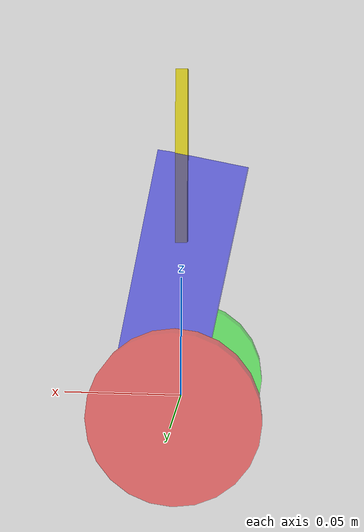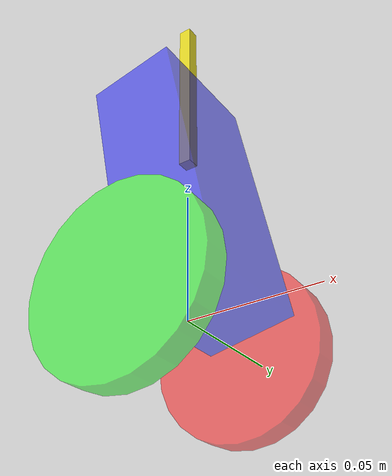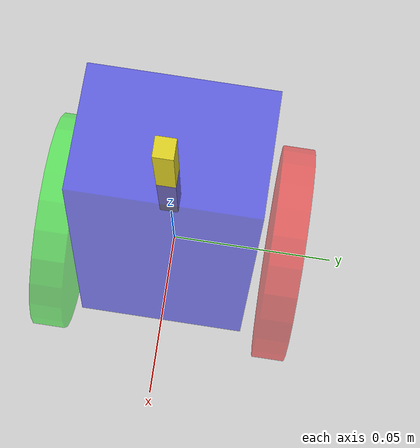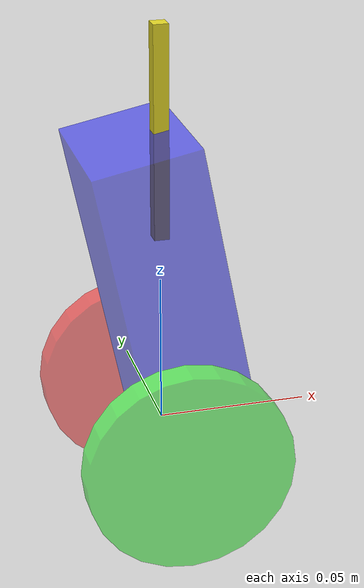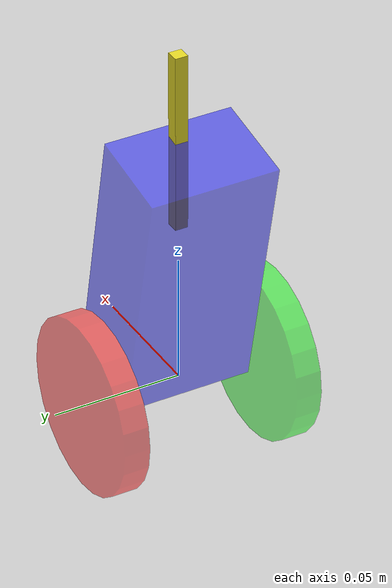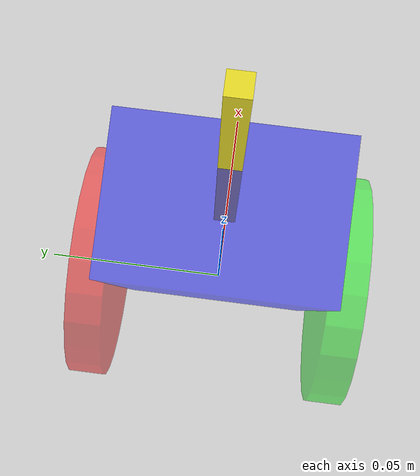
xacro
<?xml version="1.0"?>
<robot name="car_robot" xmlns:xacro="http://www.ros.org/wiki/xacro">

  <!-- Numerical Macros - units are meters and radians -->
  <xacro:property name="wheel_separation" value="0.070" />
  <xacro:property name="wheel_radius" value="0.034" />
  <xacro:property name="wheel_width"  value="0.010" />
  <xacro:property name="body_height"  value="0.1" />
  <xacro:property name="body_width"   value="0.050" />
  <xacro:property name="body_length"  value="0.035" />
  <xacro:property name="camera_link_height"  value="0.07" />
  <xacro:property name="camera_link_width"   value="0.005" />
  <xacro:property name="camera_link_length"  value="0.005" />

   <link name="edumip_body">

    <visual>
      <origin xyz="0 0 ${0.5*body_height}" rpy="0 -0.2 0" />
      <geometry>
        <box size="${body_length} ${body_width} ${body_height}" />
      </geometry>
      <material name="Blue">
      	<color rgba="0 0.0 1.0 0.5" />
      </material>
    </visual>

    <collision>
      <origin xyz="0 0 ${0.5*body_height}" rpy="0 -0.2 0" />
      <geometry>
        <box size="${body_length} ${body_width} ${body_height}" />
      </geometry>
    </collision>

  <inertial>
    <origin xyz="0 0 ${0.5*body_height}" rpy="0 0 0"/>
    <mass value="0.180"/>
    <inertia ixx="6.0e-4" ixy="0" ixz="0" iyy="6.0e-4" iyz="0" izz="6.0e-4"/>
  </inertial>
   </link>

   <link name="wheelR">

    <visual>
      <origin xyz="0 0 0" rpy="1.57079 0 0" />
      <geometry>
        <cylinder length="${wheel_width}" radius="${wheel_radius}" />
      </geometry>
      <material name="Green">
      	<color rgba="0.0 1.0 0.0 0.5" />
      </material>
    </visual>

    <collision>
      <origin xyz="0 0 0" rpy="1.57079 0 0" />
      <geometry>
        <cylinder length="${wheel_width}" radius="${wheel_radius}" />
      </geometry>
    </collision>

  <inertial>
    <origin xyz="0 0 0" rpy="0 0 0"/>
    <mass value="0.030"/>
    <inertia ixx="1.75e-5" ixy="0" ixz="0" iyy="1.75e-5" iyz="0" izz="1.75e-5"/>
  </inertial>
   </link>

   <link name="wheelL">

    <visual>
      <origin xyz="0 0 0" rpy="1.57079 0 0" />
      <geometry>
        <cylinder length="${wheel_width}" radius="${wheel_radius}" />
      </geometry>
      <material name="Red">
      	<color rgba="1 0 0 0.5" />
      </material>
    </visual>

    <collision>
      <origin xyz="0 0 0" rpy="1.57079 0 0" />
      <geometry>
        <cylinder length="${wheel_width}" radius="${wheel_radius}" />
      </geometry>
    </collision>

  <inertial>
    <origin xyz="0 0 0" rpy="0 0 0"/>
    <mass value="0.030"/>
    <inertia ixx="1.75e-5" ixy="0" ixz="0" iyy="1.75e-5" iyz="0" izz="1.75e-5"/>
  </inertial>
   </link>

     <!-- Camera -->
  <link name="camera_link">
    <collision>
      <origin xyz="0 0 0" rpy="0 0 0"/>
      <geometry>
  <box size="${camera_link_length} ${camera_link_width} ${camera_link_height}"/>
      </geometry>
    </collision>

    <visual>
      <origin xyz="0 0 0" rpy="0 0 0"/>
      <geometry>
  <box size="${camera_link_length} ${camera_link_width} ${camera_link_height}"/>
      </geometry>
      <material name="Yellow"/>
    </visual>

    <inertial>
      <mass value="1e-5" />
      <origin xyz="0 0 0" rpy="0 0 0"/>
      <inertia ixx="1e-6" ixy="0" ixz="0" iyy="1e-6" iyz="0" izz="1e-6" />
    </inertial>
  </link>

  <!-- Hokuyo Laser -->
  <link name="hokuyo_link">
    <collision>
      <origin xyz="0 0 0" rpy="0 0 0"/>
      <geometry>
  <box size="0.1 0.1 0.1"/>
      </geometry>
    </collision>

    <inertial>
      <mass value="1e-5" />
      <origin xyz="0 0 0" rpy="0 0 0"/>
      <inertia ixx="1e-6" ixy="0" ixz="0" iyy="1e-6" iyz="0" izz="1e-6" />
    </inertial>
  </link>

<joint name="camera_joint" type="fixed">
  <parent link="edumip_body"/>
  <child link="camera_link"/>
  <origin xyz="0 0 ${body_height}" rpy="0 0 0"/>
  <axis xyz="0 1 0"/>
</joint>

  <joint name="hokuyo_joint" type="fixed">
    <axis xyz="0 1 0" />
    <origin xyz="0 0 ${(body_height+camera_link_height)*0.6}" rpy="0 0 0"/>
    <parent link="edumip_body"/>
    <child link="hokuyo_link"/>
  </joint>

   <joint name="jointR" type="continuous">
    <parent link="edumip_body" />
    <child link="wheelR" />
    <origin xyz="0 ${-wheel_separation * 0.5} 0" rpy="0 0 0" />
    <axis xyz="0 1 0" />
    <dynamics friction="0.0"/>
   </joint>

   <joint name="jointL" type="continuous">
    <parent link="edumip_body" />
    <child link="wheelL" />
    <origin xyz="0 ${+wheel_separation * 0.5} 0" rpy="0 0 0" />
    <axis xyz="0 1 0" />
    <dynamics friction="0.0"/>
   </joint>

 <gazebo reference="edumip_body">
   <material>Gazebo/Blue</material>
   <mu1>0.2</mu1>
   <mu2>0.2</mu2>
 </gazebo>
 <gazebo reference="wheelR">
   <material>Gazebo/Green</material>
   <mu1>0.2</mu1>
   <mu2>0.2</mu2>
 </gazebo>
 <gazebo reference="wheelL">
   <material>Gazebo/Red</material>
   <mu1>0.2</mu1>
   <mu2>0.2</mu2>
 </gazebo>

<gazebo reference="camera_link">
  <material>Gazebo/Yellow</material>
</gazebo>

<gazebo>
 <plugin name="edumip_balance_ros_gazebo_plugin" filename="libedumip_balance_ros_gazebo_plugin.so">
 <rosDebugLevel>3</rosDebugLevel>
 <updateRate>100</updateRate>
 <robotBaseFrame>edumip_body</robotBaseFrame>
 <leftJoint>jointL</leftJoint>
 <rightJoint>jointR</rightJoint>
 <wheelSeparation>${wheel_separation}</wheelSeparation>
 <wheelDiameter>${wheel_radius*2.0}</wheelDiameter>
 <commandTopic>/edumip/cmd</commandTopic>
 <stateTopic>/edumip/state</stateTopic>
 </plugin>
</gazebo>

 <gazebo reference="camera_link">
 <sensor type="camera" name="camera1">
   <update_rate>30.0</update_rate>
   <camera name="head">
     <horizontal_fov>1.3962634</horizontal_fov>
     <image>
       <width>800</width>
       <height>800</height>
       <format>R8G8B8</format>
     </image>
     <clip>
       <near>0.02</near>
       <far>300</far>
     </clip>
     <noise>
       <type>gaussian</type>
       <mean>0.0</mean>
       <stddev>0.007</stddev>
     </noise>
   </camera>
   <plugin name="camera_controller" filename="libgazebo_ros_camera.so">
     <robotNamespace>edumip</robotNamespace>
     <alwaysOn>true</alwaysOn>
     <updateRate>10.0</updateRate>
     <cameraName>camera1</cameraName>
     <imageTopicName>image_raw</imageTopicName>
     <cameraInfoTopicName>camera_info</cameraInfoTopicName>
     <frameName>camera_link</frameName>
     <hackBaseline>0.07</hackBaseline>
     <distortionK1>0.0</distortionK1>
     <distortionK2>0.0</distortionK2>
     <distortionK3>0.0</distortionK3>
     <distortionT1>0.0</distortionT1>
     <distortionT2>0.0</distortionT2>
   </plugin>
 </sensor>
</gazebo>

  <!-- hokuyo -->
  <gazebo reference="hokuyo_link">
      <sensor type="ray" name="head_hokuyo_sensor">
      <pose>0 0 0 0 0 0</pose>
      <visualize>true</visualize>
      <update_rate>40</update_rate>
      <ray>
        <scan>
          <horizontal>
            <samples>720</samples>
            <resolution>1</resolution>
            <min_angle>-1.570796</min_angle>
            <max_angle>1.570796</max_angle>
          </horizontal>
        </scan>
        <range>
          <min>0.10</min>
          <max>30.0</max>
          <resolution>0.01</resolution>
        </range>
        <noise>
          <type>gaussian</type>
          <mean>0.0</mean>
          <stddev>0.01</stddev>
        </noise>
      </ray>
      <plugin name="gazebo_ros_head_hokuyo_controller" filename="libgazebo_ros_laser.so">
        <topicName>/edumip/laser/scan</topicName>
        <frameName>hokuyo_link</frameName>
      </plugin>
    </sensor>
  </gazebo>

</robot>
